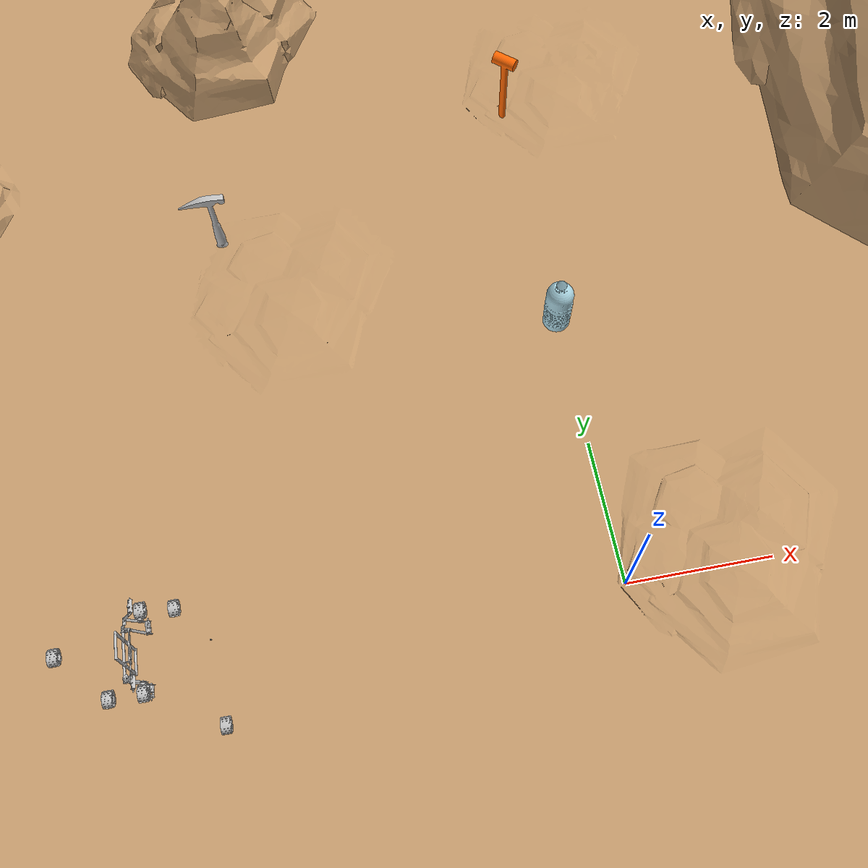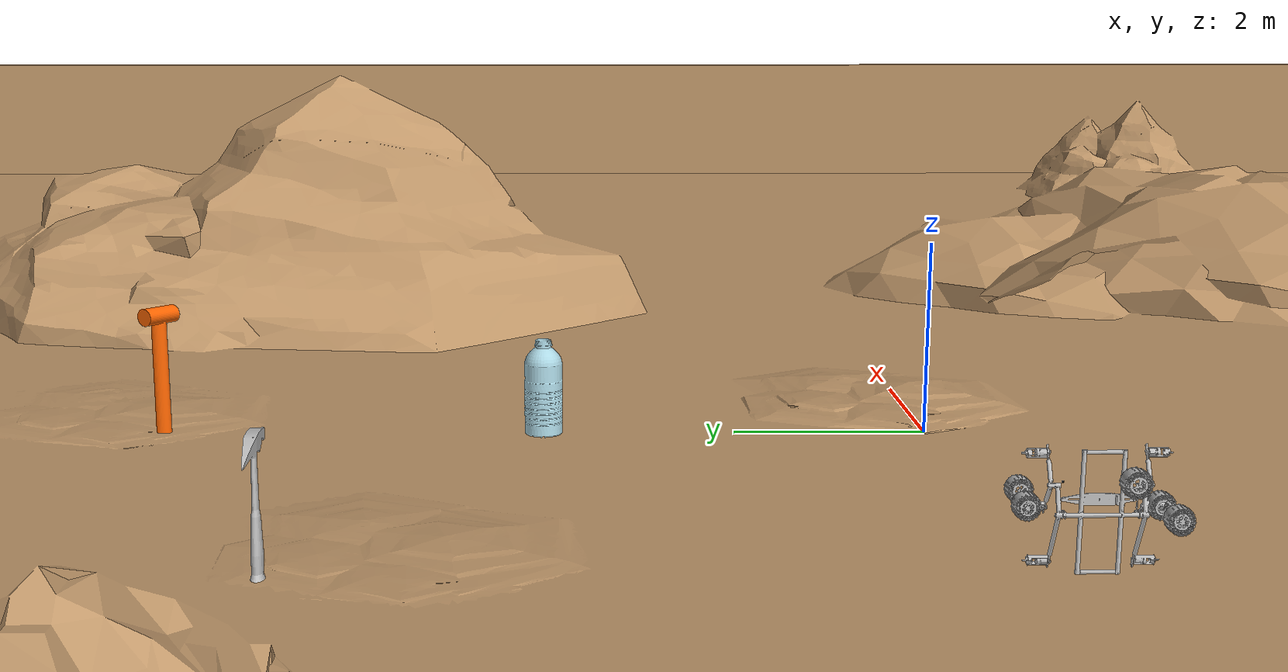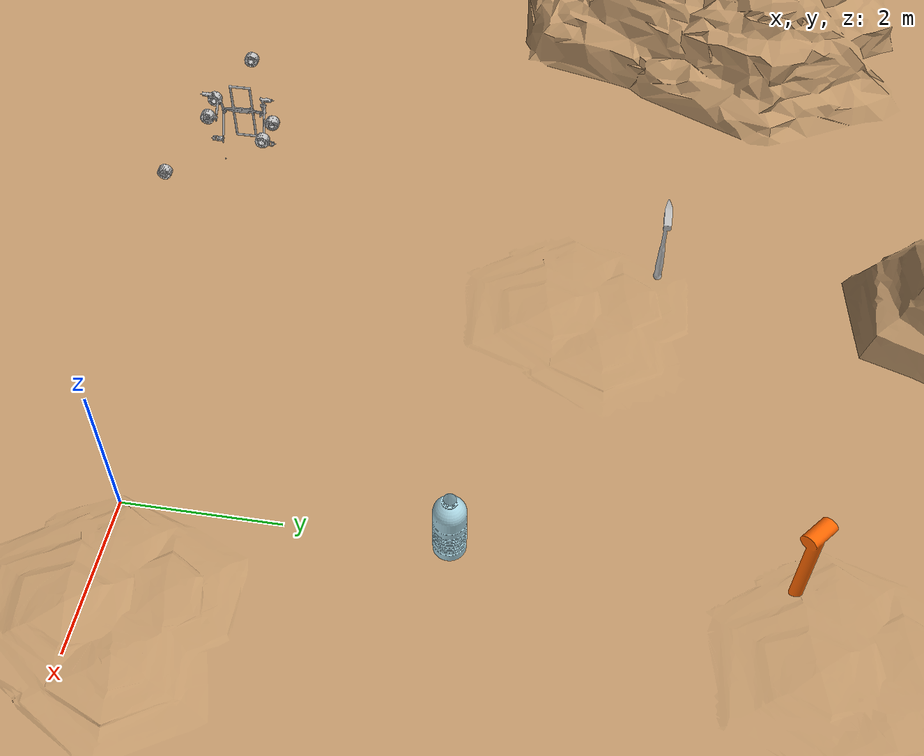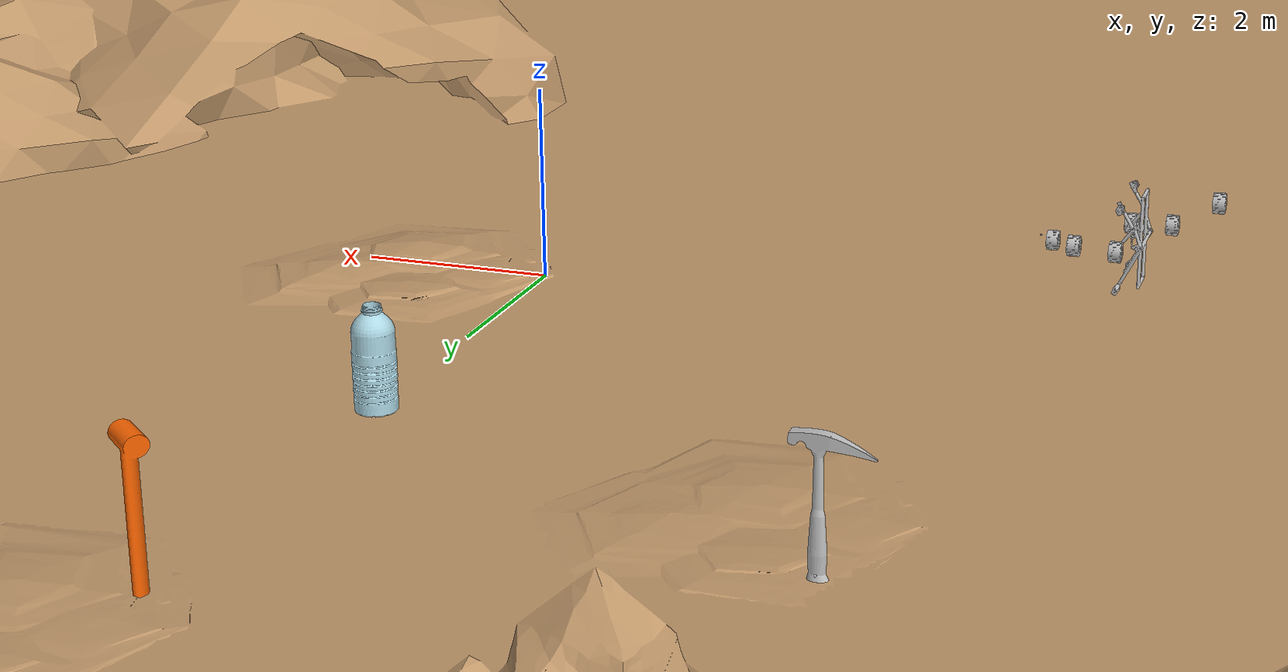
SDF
<?xml version="1.0" ?>
<sdf version="1.8">
    <world name="sim_world">
        <physics name="1ms" type="ignored">
            <max_step_size>0.001</max_step_size>
            <real_time_factor>1.0</real_time_factor>
        </physics>
        <plugin
            filename="ignition-gazebo-physics-system"
            name="ignition::gazebo::systems::Physics">
        </plugin>
        <plugin
            filename="ignition-gazebo-user-commands-system"
            name="ignition::gazebo::systems::UserCommands">
        </plugin>
        <plugin
            filename="ignition-gazebo-scene-broadcaster-system"
            name="ignition::gazebo::systems::SceneBroadcaster">
        </plugin>
        <plugin filename="ignition-gazebo-imu-system"
                name="ignition::gazebo::systems::Imu">
        </plugin>
        <plugin filename="ignition-gazebo-sensors-system"
                name="ignition::gazebo::systems::Sensors">
            <render_engine>ogre2</render_engine>
        </plugin>
        <plugin filename="ignition-gazebo-contact-system"
                name="ignition::gazebo::systems::Contact">
        </plugin>
        <gui fullscreen="0">
          <!-- 3D scene -->
          <plugin filename="MinimalScene" name="3D View">
          <gz-gui>
            <title>3D View</title>
            <property type="bool" key="showTitleBar">false</property>
            <property type="string" key="state">docked</property>
          </gz-gui>

          <engine>ogre2</engine>
          <scene>scene</scene>
          <ambient_light>0.4 0.4 0.4</ambient_light>
          <background_color>0.8 0.8 0.8</background_color>
          <camera_pose>-6 0 6 0 0.5 0</camera_pose>
          <camera_clip>
            <near>0.25</near>
            <far>25000</far>
          </camera_clip>
          </plugin>

          <!-- Plugins that add functionality to the scene -->
          <plugin filename="EntityContextMenuPlugin" name="Entity context menu">
          <gz-gui>
            <property key="state" type="string">floating</property>
            <property key="width" type="double">5</property>
            <property key="height" type="double">5</property>
            <property key="showTitleBar" type="bool">false</property>
          </gz-gui>
          </plugin>
          <plugin filename="GzSceneManager" name="Scene Manager">
          <gz-gui>
            <property key="resizable" type="bool">false</property>
            <property key="width" type="double">5</property>
            <property key="height" type="double">5</property>
            <property key="state" type="string">floating</property>
            <property key="showTitleBar" type="bool">false</property>
          </gz-gui>
          </plugin>
          <plugin filename="InteractiveViewControl" name="Interactive view control">
          <gz-gui>
            <property key="resizable" type="bool">false</property>
            <property key="width" type="double">5</property>
            <property key="height" type="double">5</property>
            <property key="state" type="string">floating</property>
            <property key="showTitleBar" type="bool">false</property>
          </gz-gui>
          </plugin>
          <plugin filename="CameraTracking" name="Camera Tracking">
          <gz-gui>
            <property key="resizable" type="bool">false</property>
            <property key="width" type="double">5</property>
            <property key="height" type="double">5</property>
            <property key="state" type="string">floating</property>
            <property key="showTitleBar" type="bool">false</property>
          </gz-gui>
          </plugin>
          <plugin filename="MarkerManager" name="Marker manager">
          <gz-gui>
            <property key="resizable" type="bool">false</property>
            <property key="width" type="double">5</property>
            <property key="height" type="double">5</property>
            <property key="state" type="string">floating</property>
            <property key="showTitleBar" type="bool">false</property>
          </gz-gui>
          </plugin>
          <plugin filename="SelectEntities" name="Select Entities">
          <gz-gui>
            <anchors target="Select entities">
              <line own="right" target="right"/>
              <line own="top" target="top"/>
            </anchors>
            <property key="resizable" type="bool">false</property>
            <property key="width" type="double">5</property>
            <property key="height" type="double">5</property>
            <property key="state" type="string">floating</property>
            <property key="showTitleBar" type="bool">false</property>
          </gz-gui>
          </plugin>
          <plugin filename="VisualizationCapabilities" name="Visualization Capabilities">
          <gz-gui>
            <property key="resizable" type="bool">false</property>
            <property key="width" type="double">5</property>
            <property key="height" type="double">5</property>
            <property key="state" type="string">floating</property>
            <property key="showTitleBar" type="bool">false</property>
          </gz-gui>
          </plugin>

          <plugin filename="Spawn" name="Spawn Entities">
          <gz-gui>
            <anchors target="Select entities">
              <line own="right" target="right"/>
              <line own="top" target="top"/>
            </anchors>
            <property key="resizable" type="bool">false</property>
            <property key="width" type="double">5</property>
            <property key="height" type="double">5</property>
            <property key="state" type="string">floating</property>
            <property key="showTitleBar" type="bool">false</property>
          </gz-gui>
          </plugin>

          <!-- World control -->
          <plugin filename="WorldControl" name="World control">
          <gz-gui>
            <title>World control</title>
            <property type="bool" key="showTitleBar">false</property>
            <property type="bool" key="resizable">false</property>
            <property type="double" key="height">72</property>
            <property type="double" key="width">121</property>
            <property type="double" key="z">1</property>

            <property type="string" key="state">floating</property>
            <anchors target="3D View">
              <line own="left" target="left"/>
              <line own="bottom" target="bottom"/>
            </anchors>
          </gz-gui>

          <play_pause>true</play_pause>
          <step>true</step>
          <start_paused>true</start_paused>
          <use_event>true</use_event>

          </plugin>

          <!-- World statistics -->
          <plugin filename="WorldStats" name="World stats">
          <gz-gui>
            <title>World stats</title>
            <property type="bool" key="showTitleBar">false</property>
            <property type="bool" key="resizable">false</property>
            <property type="double" key="height">110</property>
            <property type="double" key="width">290</property>
            <property type="double" key="z">1</property>

            <property type="string" key="state">floating</property>
            <anchors target="3D View">
              <line own="right" target="right"/>
              <line own="bottom" target="bottom"/>
            </anchors>
          </gz-gui>

          <sim_time>true</sim_time>
          <real_time>true</real_time>
          <real_time_factor>true</real_time_factor>
          <iterations>true</iterations>
          </plugin>

          <!-- Insert simple shapes -->
          <plugin filename="Shapes" name="Shapes">
          <gz-gui>
            <property key="resizable" type="bool">false</property>
            <property key="x" type="double">0</property>
            <property key="y" type="double">0</property>
            <property key="width" type="double">250</property>
            <property key="height" type="double">50</property>
            <property key="state" type="string">floating</property>
            <property key="showTitleBar" type="bool">false</property>
            <property key="cardBackground" type="string">#666666</property>
          </gz-gui>
          </plugin>

          <!-- Insert lights -->
          <plugin filename="Lights" name="Lights">
          <gz-gui>
            <property key="resizable" type="bool">false</property>
            <property key="x" type="double">250</property>
            <property key="y" type="double">0</property>
            <property key="width" type="double">150</property>
            <property key="height" type="double">50</property>
            <property key="state" type="string">floating</property>
            <property key="showTitleBar" type="bool">false</property>
            <property key="cardBackground" type="string">#666666</property>
          </gz-gui>
          </plugin>

          <!-- Translate / rotate -->
          <plugin filename="TransformControl" name="Transform control">
          <gz-gui>
            <property key="resizable" type="bool">false</property>
            <property key="x" type="double">0</property>
            <property key="y" type="double">50</property>
            <property key="width" type="double">250</property>
            <property key="height" type="double">50</property>
            <property key="state" type="string">floating</property>
            <property key="showTitleBar" type="bool">false</property>
            <property key="cardBackground" type="string">#777777</property>
          </gz-gui>
          </plugin>

          <!-- Screenshot -->
          <plugin filename="Screenshot" name="Screenshot">
          <gz-gui>
            <property key="resizable" type="bool">false</property>
            <property key="x" type="double">250</property>
            <property key="y" type="double">50</property>
            <property key="width" type="double">50</property>
            <property key="height" type="double">50</property>
            <property key="state" type="string">floating</property>
            <property key="showTitleBar" type="bool">false</property>
            <property key="cardBackground" type="string">#777777</property>
          </gz-gui>
          </plugin>

          <!-- Video recorder -->
          <plugin filename="VideoRecorder" name="VideoRecorder">
          <gz-gui>
            <property key="resizable" type="bool">false</property>
            <property key="x" type="double">300</property>
            <property key="y" type="double">50</property>
            <property key="width" type="double">50</property>
            <property key="height" type="double">50</property>
            <property key="state" type="string">floating</property>
            <property key="showTitleBar" type="bool">false</property>
            <property key="cardBackground" type="string">#777777</property>
          </gz-gui>

          <record_video>
            <use_sim_time>true</use_sim_time>
            <lockstep>false</lockstep>
            <bitrate>4000000</bitrate>
          </record_video>
          </plugin>

          <!-- Inspector -->
          <plugin filename="ComponentInspector" name="Component inspector">
          <gz-gui>
            <property type="string" key="state">docked_collapsed</property>
          </gz-gui>
          </plugin>

          <!-- Entity tree -->
          <plugin filename="EntityTree" name="Entity tree">
          <gz-gui>
            <property type="string" key="state">docked_collapsed</property>
          </gz-gui>
          </plugin>

          <!-- View angle -->
          <plugin filename="ViewAngle" name="View angle">
          <gz-gui>
            <property type="string" key="state">docked_collapsed</property>
          </gz-gui>
          </plugin>

            <!-- KeyPublisher plugin-->
            <plugin filename="KeyPublisher" name="Key Publisher"/>

        </gui>

        <light type="directional" name="sun">
            <cast_shadows>true</cast_shadows>
            <pose>0 0 10 0 0 0</pose>
            <diffuse>0.8 0.8 0.8 1</diffuse>
            <specular>0.2 0.2 0.2 1</specular>
            <attenuation>
                <range>1000</range>
                <constant>0.9</constant>
                <linear>0.01</linear>
                <quadratic>0.001</quadratic>
            </attenuation>
            <direction>-0.5 0.1 -0.9</direction>
        </light>

        <model name="mars_environment">
            <static>true</static>
            <link name="desert">
                <visual name="visual">
                    <geometry>
                        <mesh>
                            <uri>mars.stl</uri>
                            <scale>0.1 0.1 0.1</scale>
                        </mesh>
                    </geometry>
                    <material>
                        <ambient>0.76 0.60 0.42 1</ambient>
                        <diffuse>0.76 0.60 0.42 1</diffuse>
                    </material>
                    <pose>0 0 0 0 0 3.14159</pose>
                </visual>
                <collision name="collision">
                    <geometry>
                    <mesh>
                        <uri>mars.stl</uri>
                        <scale>0.1 0.1 0.1</scale>
                    </mesh>
                    </geometry>
                    <pose>0 0 0 0 0 3.14159</pose>
                </collision>
            </link>
        </model>

        <model name="water_bottle">
            <static>true</static>
            <link name="water_bottle_link">
                <visual name="visual">
                    <geometry>
                        <mesh>
                            <uri>water_bottle.stl</uri>
                            <scale>0.4 0.4 0.4</scale>
                        </mesh>
                    </geometry>
                    <material>
                        <ambient>0.68 0.85 0.90 1</ambient>
                        <diffuse>0.68 0.85 0.90 1</diffuse>
                    </material>
                    <pose>0 0 0 0 0 3.14159</pose>
                </visual>
                <collision name="collision">
                    <geometry>
                    <mesh>
                        <uri>water_bottle.stl</uri>
                        <scale>0.4 0.4 0.4</scale>
                    </mesh>
                    </geometry>
                    <pose>0 0 0 0 0 3.14159</pose>
                </collision>
            </link>
        </model>

        <model name="mallet">
            <static>true</static>
            <link name="mallet_link">
                <visual name="visual">
                    <geometry>
                        <mesh>
                            <uri>mallet.stl</uri>
                            <scale>0.4 0.4 0.4</scale>
                        </mesh>
                    </geometry>
                    <material>
                        <ambient>1 0.4 0.0 1</ambient>
                        <diffuse>1 0.4 0.0 1</diffuse>
                    </material>
                    <pose>0 0 0 0 0 3.14159</pose>
                </visual>
                <collision name="collision">
                    <geometry>
                    <mesh>
                        <uri>mallet.stl</uri>
                        <scale>0.4 0.4 0.4</scale>
                    </mesh>
                    </geometry>
                    <pose>0 0 0 0 0 3.14159</pose>
                </collision>
            </link>
        </model>

        <model name="pick">
            <static>true</static>
            <link name="pick_link">
                <visual name="visual">
                    <geometry>
                        <mesh>
                            <uri>pick.stl</uri>
                            <scale>0.004 0.004 0.004</scale>
                        </mesh>
                    </geometry>
                    <material>
                        <ambient>0.5 0.5 0.5 1</ambient>
                        <diffuse>0.75 0.75 0.75 1</diffuse>
                        <specular>0.9 0.9 0.9 1</specular>
                        <emissive>0 0 0 1</emissive>
                    </material>
                    <pose>0 2 -1.2 0 0 3.14159</pose>
                </visual>
                <collision name="collision">
                    <geometry>
                    <mesh>
                        <uri>pick.stl</uri>
                        <scale>0.004 0.004 0.004</scale>
                    </mesh>
                    </geometry>
                    <pose>0 2 -1.2 0 0 3.14159</pose>
                </collision>
            </link>
        </model>

        <model name='robot' canonical_link='chassis'>
            <pose relative_to='world'>-6 0 1 0 0 0</pose>   <!--the pose is relative to the world by default-->

            <frame name="lidar_frame" attached_to='chassis'>
                <pose>0.8 0 0.5 0 0 0</pose>
            </frame>

            <!-- Frame for the simulated depth camera -->
            <frame name="camera_frame" attached_to='chassis'>
                <pose>0.8 0 0.5 0 0 0</pose>
            </frame>

            <link name='chassis'>
                <pose relative_to='__model__'>0 0 0 0 0 0</pose>
                <inertial> <!--inertial properties of the link mass, inertia matix-->
                    <mass>20</mass>
                    <inertia>
                        <ixx>2.206</ixx>
                        <ixy>0</ixy>
                        <ixz>0</ixz>
                        <iyy>7.283</iyy>
                        <iyz>0</iyz>
                        <izz>8.410</izz>
                    </inertia>
                </inertial>
                <visual name='visual'>
                    <pose>0 0 0 1.5708 3.1416 -1.5708</pose>
                    <geometry>
                        <mesh>
                            <uri>rover_base_link.stl</uri>
                        </mesh>
                    </geometry>
                    <material>
                        <ambient>0.75 0.75 0.75 1</ambient>
                        <diffuse>0.75 0.75 0.75 1</diffuse>
                        <specular>0.3 0.3 0.3 1</specular>
                    </material>
                </visual>
                <collision name='collision'>
                    <pose>0 0 0.05 0 0 0</pose>
                    <geometry>
                        <box>
                            <size>1.0 0.6 0.2</size>
                        </box>
                    </geometry>
                </collision>
                <sensor name="imu_sensor" type="imu">
                    <always_on>1</always_on>
                    <update_rate>1</update_rate>
                    <visualize>true</visualize>
                    <topic>imu</topic>
                </sensor>
                <!-- Simulated RealSense D435 -->
                <sensor name="camera" type="rgbd_camera">
                    <pose relative_to="camera_frame">0 0 0 0 0 0</pose>
                    <update_rate>30</update_rate>
                    <camera name="color_camera">
                        <horizontal_fov>1.51843645</horizontal_fov>
                        <image>
                            <width>320</width>
                            <height>240</height>
                            <format>R8G8B8</format>
                        </image>
                        <lens>
                            <intrinsics>
                                <fx>303.9691</fx>
                                <fy>303.7607</fy>
                                <cx>163.6526</cx>
                                <cy>119.2695</cy>
                                <s>0</s>
                            </intrinsics>
                        </lens>
                        <distortion>
                            <k1>0.0</k1>
                            <k2>0.0</k2>
                            <k3>0.0</k3>
                            <p1>0.0</p1>
                            <p2>0.0</p2>
                            <center>0.5 0.5</center>
                        </distortion>
                        <clip>
                            <near>0.1</near>
                            <far>100</far>
                        </clip>
                        <depth_camera>
                        </depth_camera>
                        <noise>
                            <type>gaussian</type>
                            <mean>0</mean>
                            <stddev>0.007</stddev>
                        </noise>
                    </camera>
                    <topic>camera</topic>
                </sensor>
            </link>

            <!--let's build the left wheel-->
            <link name='left_wheel'>
                <pose relative_to="chassis">0 0.48455 0 -1.5707 0 0</pose> <!--angles are in radian-->
                <inertial>
                    <mass>2</mass>
                    <inertia>
                        <ixx>0.145833</ixx>
                        <ixy>0</ixy>
                        <ixz>0</ixz>
                        <iyy>0.145833</iyy>
                        <iyz>0</iyz>
                        <izz>0.125</izz>
                    </inertia>
                </inertial>
                <visual name='visual'>
                    <pose>0 0 0 1.5708 0 0</pose>
                    <geometry>
                        <mesh>
                            <uri>rover_center_left_wheel.stl</uri>
                        </mesh>
                    </geometry>
                    <material>
                        <ambient>0.75 0.75 0.75 1</ambient>
                        <diffuse>0.75 0.75 0.75 1</diffuse>
                        <specular>0.2 0.2 0.2 1</specular>
                    </material>
                </visual>
                <collision name='collision'>
                    <geometry>
                        <cylinder>
                            <radius>0.10</radius>
                            <length>0.2</length>
                        </cylinder>
                    </geometry>
                </collision>
            </link>

            <!--copy and paste for right wheel but change position-->
            <link name='right_wheel'>
                <pose relative_to="chassis">0 -0.48455 0 -1.5707 0 0</pose> <!--angles are in radian-->
                <inertial>
                    <mass>2</mass>
                    <inertia>
                        <ixx>0.145833</ixx>
                        <ixy>0</ixy>
                        <ixz>0</ixz>
                        <iyy>0.145833</iyy>
                        <iyz>0</iyz>
                        <izz>0.125</izz>
                    </inertia>
                </inertial>
                <visual name='visual'>
                    <pose>0 0 0 1.5708 0 0</pose>
                    <geometry>
                        <mesh>
                            <uri>rover_center_right_wheel.stl</uri>
                        </mesh>
                    </geometry>
                    <material>
                        <ambient>0.75 0.75 0.75 1</ambient>
                        <diffuse>0.75 0.75 0.75 1</diffuse>
                        <specular>0.2 0.2 0.2 1</specular>
                    </material>
                </visual>
                <collision name='collision'>
                    <geometry>
                        <cylinder>
                            <radius>0.10</radius>
                            <length>0.2</length>
                        </cylinder>
                    </geometry>
                </collision>
            </link>

            <frame name="caster_frame" attached_to='chassis'>
                <pose>0.8 0 -0.05 0 0 0</pose>
            </frame>

            <!--caster wheel-->
            <link name='caster'>
                <pose relative_to='caster_frame'/>
                <inertial>
                    <mass>1</mass>
                    <inertia>
                        <ixx>0.1</ixx>
                        <ixy>0</ixy>
                        <ixz>0</ixz>
                        <iyy>0.1</iyy>
                        <iyz>0</iyz>
                        <izz>0.1</izz>
                    </inertia>
                </inertial>
                <visual name='visual'>
                    <geometry>
                        <sphere>
                            <radius>0.01</radius>
                        </sphere>
                    </geometry>
                    <material>
                        <ambient>0 0 0 0</ambient>
                        <diffuse>0 0 0 0</diffuse>
                    </material>
                </visual>
                <collision name='collision'>
                    <geometry>
                        <sphere>
                            <radius>0.05</radius>
                        </sphere>
                    </geometry>
                </collision>
            </link>

            <!--connecting these links together using joints-->
            <joint name='left_wheel_joint' type='revolute'> <!--continous joint is not supported yet-->
                <pose relative_to='left_wheel'/>
                <parent>chassis</parent>
                <child>left_wheel</child>
                <axis>
                    <xyz expressed_in='__model__'>0 1 0</xyz> <!--can be descired to any frame or even arbitrary frames-->
                    <limit>
                        <lower>-1.79769e+308</lower>    <!--negative infinity-->
                        <upper>1.79769e+308</upper>     <!--positive infinity-->
                    </limit>
                </axis>
            </joint>

            <joint name='right_wheel_joint' type='revolute'>
                <pose relative_to='right_wheel'/>
                <parent>chassis</parent>
                <child>right_wheel</child>
                <axis>
                    <xyz expressed_in='__model__'>0 1 0</xyz>
                    <limit>
                        <lower>-1.79769e+308</lower>    <!--negative infinity-->
                        <upper>1.79769e+308</upper>     <!--positive infinity-->
                    </limit>
                </axis>
            </joint>

            <!--different type of joints ball joint--> <!--defult value is the child-->
            <joint name='caster_wheel' type='ball'>
                <parent>chassis</parent>
                <child>caster</child>
            </joint>

            <!-- Front-left visual wheel (no collision, fixed to chassis) -->
            <link name='fl_whl'>
                <pose relative_to="chassis">0.40398 0.43855 0.0080468 -1.5707 0 0</pose>
                <inertial>
                    <mass>0.001</mass>
                    <inertia>
                        <ixx>1e-7</ixx><ixy>0</ixy><ixz>0</ixz>
                        <iyy>1e-7</iyy><iyz>0</iyz><izz>1e-7</izz>
                    </inertia>
                </inertial>
                <visual name='visual'>
                    <pose>0 0 0 1.5708 0 0</pose>
                    <geometry>
                        <mesh><uri>rover_front_left_wheel.stl</uri></mesh>
                    </geometry>
                    <material>
                        <ambient>0.75 0.75 0.75 1</ambient>
                        <diffuse>0.75 0.75 0.75 1</diffuse>
                    </material>
                </visual>
            </link>
            <joint name='fl_whl_joint' type='revolute'>
                <pose relative_to='fl_whl'/>
                <parent>chassis</parent>
                <child>fl_whl</child>
                <axis>
                    <xyz expressed_in='__model__'>0 1 0</xyz>
                    <limit>
                        <lower>-1.79769e+308</lower>
                        <upper>1.79769e+308</upper>
                    </limit>
                </axis>
            </joint>

            <!-- Front-right visual wheel -->
            <link name='fr_whl'>
                <pose relative_to="chassis">0.40398 -0.43855 0.0080468 -1.5707 0 0</pose>
                <inertial>
                    <mass>0.001</mass>
                    <inertia>
                        <ixx>1e-7</ixx><ixy>0</ixy><ixz>0</ixz>
                        <iyy>1e-7</iyy><iyz>0</iyz><izz>1e-7</izz>
                    </inertia>
                </inertial>
                <visual name='visual'>
                    <pose>0 0 0 1.5708 0 0</pose>
                    <geometry>
                        <mesh><uri>rover_front_right_wheel.stl</uri></mesh>
                    </geometry>
                    <material>
                        <ambient>0.75 0.75 0.75 1</ambient>
                        <diffuse>0.75 0.75 0.75 1</diffuse>
                    </material>
                </visual>
            </link>
            <joint name='fr_whl_joint' type='revolute'>
                <pose relative_to='fr_whl'/>
                <parent>chassis</parent>
                <child>fr_whl</child>
                <axis>
                    <xyz expressed_in='__model__'>0 1 0</xyz>
                    <limit>
                        <lower>-1.79769e+308</lower>
                        <upper>1.79769e+308</upper>
                    </limit>
                </axis>
            </joint>

            <!-- Rear-left visual wheel -->
            <link name='rl_whl'>
                <pose relative_to="chassis">-0.39807 0.48455 0.016315 -1.5707 0 0</pose>
                <inertial>
                    <mass>0.001</mass>
                    <inertia>
                        <ixx>1e-7</ixx><ixy>0</ixy><ixz>0</ixz>
                        <iyy>1e-7</iyy><iyz>0</iyz><izz>1e-7</izz>
                    </inertia>
                </inertial>
                <visual name='visual'>
                    <pose>0 0 0 1.5708 0 0</pose>
                    <geometry>
                        <mesh><uri>rover_rear_left_wheel.stl</uri></mesh>
                    </geometry>
                    <material>
                        <ambient>0.75 0.75 0.75 1</ambient>
                        <diffuse>0.75 0.75 0.75 1</diffuse>
                    </material>
                </visual>
            </link>
            <joint name='rl_whl_joint' type='revolute'>
                <pose relative_to='rl_whl'/>
                <parent>chassis</parent>
                <child>rl_whl</child>
                <axis>
                    <xyz expressed_in='__model__'>0 1 0</xyz>
                    <limit>
                        <lower>-1.79769e+308</lower>
                        <upper>1.79769e+308</upper>
                    </limit>
                </axis>
            </joint>

            <!-- Rear-right visual wheel -->
            <link name='rr_whl'>
                <pose relative_to="chassis">-0.39807 -0.48455 0.016315 -1.5707 0 0</pose>
                <inertial>
                    <mass>0.001</mass>
                    <inertia>
                        <ixx>1e-7</ixx><ixy>0</ixy><ixz>0</ixz>
                        <iyy>1e-7</iyy><iyz>0</iyz><izz>1e-7</izz>
                    </inertia>
                </inertial>
                <visual name='visual'>
                    <pose>0 0 0 1.5708 0 0</pose>
                    <geometry>
                        <mesh><uri>rover_rear_right_wheel.stl</uri></mesh>
                    </geometry>
                    <material>
                        <ambient>0.75 0.75 0.75 1</ambient>
                        <diffuse>0.75 0.75 0.75 1</diffuse>
                    </material>
                </visual>
            </link>
            <joint name='rr_whl_joint' type='revolute'>
                <pose relative_to='rr_whl'/>
                <parent>chassis</parent>
                <child>rr_whl</child>
                <axis>
                    <xyz expressed_in='__model__'>0 1 0</xyz>
                    <limit>
                        <lower>-1.79769e+308</lower>
                        <upper>1.79769e+308</upper>
                    </limit>
                </axis>
            </joint>

            <!--diff drive plugin-->
            <plugin
                filename="ignition-gazebo-diff-drive-system"
                name="ignition::gazebo::systems::DiffDrive">
                <left_joint>left_wheel_joint</left_joint>
                <left_joint>fl_whl_joint</left_joint>
                <left_joint>rl_whl_joint</left_joint>
                <right_joint>right_wheel_joint</right_joint>
                <right_joint>fr_whl_joint</right_joint>
                <right_joint>rr_whl_joint</right_joint>
                <wheel_separation>1.2</wheel_separation>
                <wheel_radius>0.10</wheel_radius>
                <odom_publish_frequency>1</odom_publish_frequency>
                <topic>cmd_vel</topic>
            </plugin>
            <plugin
                filename="libignition-gazebo-pose-publisher-system.so"
                name="ignition::gazebo::systems::PosePublisher">
                <topicName>tf</topicName>
                <publish_link_pose>true</publish_link_pose>
                <publish_sensor_pose>true</publish_sensor_pose>
                <publish_collision_pose>false</publish_collision_pose>
                <publish_visual_pose>false</publish_visual_pose>
                <publish_nested_model_pose>true</publish_nested_model_pose> <!-- this bit is important -->
                <use_pose_vector_msg>true</use_pose_vector_msg>
                <static_publisher>true</static_publisher>
                <static_update_frequency>1000</static_update_frequency>
            </plugin>
        </model>

        <!-- Moving Forward-->
        <plugin filename="ignition-gazebo-triggered-publisher-system"
                name="ignition::gazebo::systems::TriggeredPublisher">
            <input type="ignition.msgs.Int32" topic="/keyboard/keypress">
                <match field="data">16777235</match>
            </input>
            <output type="ignition.msgs.Twist" topic="/cmd_vel">
                linear: {x: 0.5}, angular: {z: 0.0}
            </output>
        </plugin>

        <!-- Moving Backward-->
        <plugin filename="ignition-gazebo-triggered-publisher-system"
                name="ignition::gazebo::systems::TriggeredPublisher">
            <input type="ignition.msgs.Int32" topic="/keyboard/keypress">
                <match field="data">16777237</match>
            </input>
            <output type="ignition.msgs.Twist" topic="/cmd_vel">
                linear: {x: -0.5}, angular: {z: 0.0}
            </output>
        </plugin>

        <!-- Rotating right-->
        <plugin filename="ignition-gazebo-triggered-publisher-system"
                name="ignition::gazebo::systems::TriggeredPublisher">
            <input type="ignition.msgs.Int32" topic="/keyboard/keypress">
                <match field="data">16777236</match>
            </input>
            <output type="ignition.msgs.Twist" topic="/cmd_vel">
                linear: {x: 0.0}, angular: {z: -0.5}
            </output>
        </plugin>

        <!--Rotating left-->
        <plugin filename="ignition-gazebo-triggered-publisher-system"
                name="ignition::gazebo::systems::TriggeredPublisher">
            <input type="ignition.msgs.Int32" topic="/keyboard/keypress">
                <match field="data">16777234</match>
            </input>
            <output type="ignition.msgs.Twist" topic="/cmd_vel">
                linear: {x: 0.0}, angular: {z: 0.5}
            </output>
        </plugin>

        <!--stop when hit the wall-->
        <plugin filename="ignition-gazebo-triggered-publisher-system"
                name="ignition::gazebo::systems::TriggeredPublisher">
            <input type="ignition.msgs.Boolean" topic="/wall/touched">
                <match>data: true</match>
            </input>
            <output type="ignition.msgs.Twist" topic="/cmd_vel">
                linear: {x: 0.0}, angular: {z: 0.0}
            </output>
        </plugin>

    </world>
</sdf>
